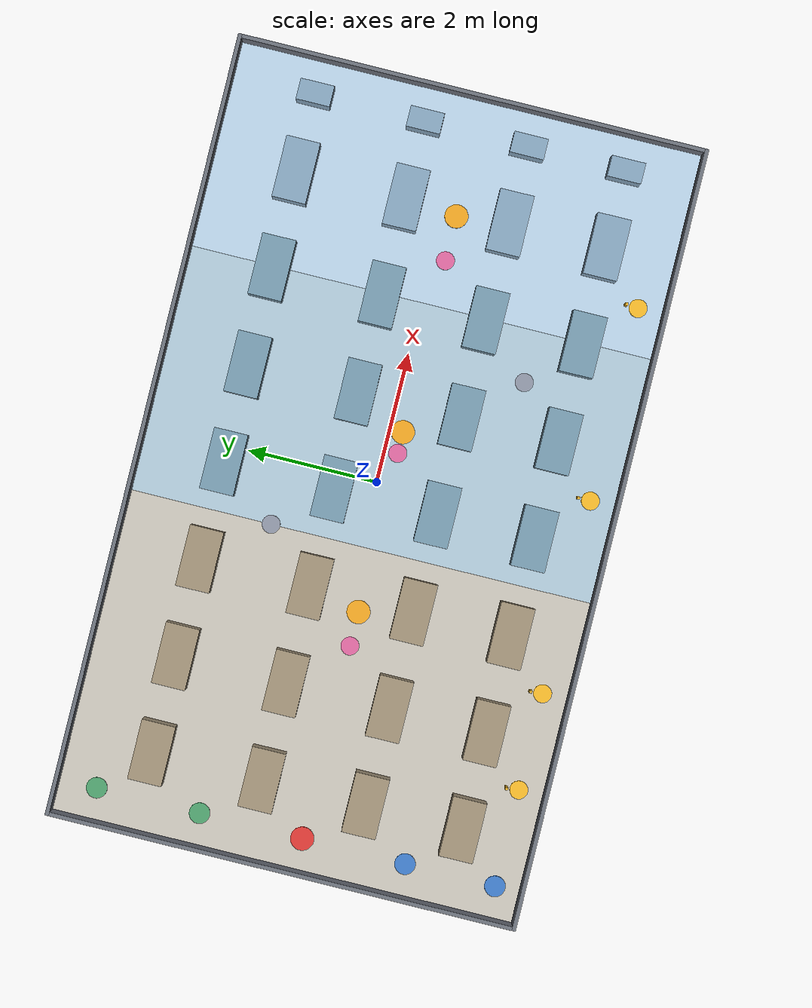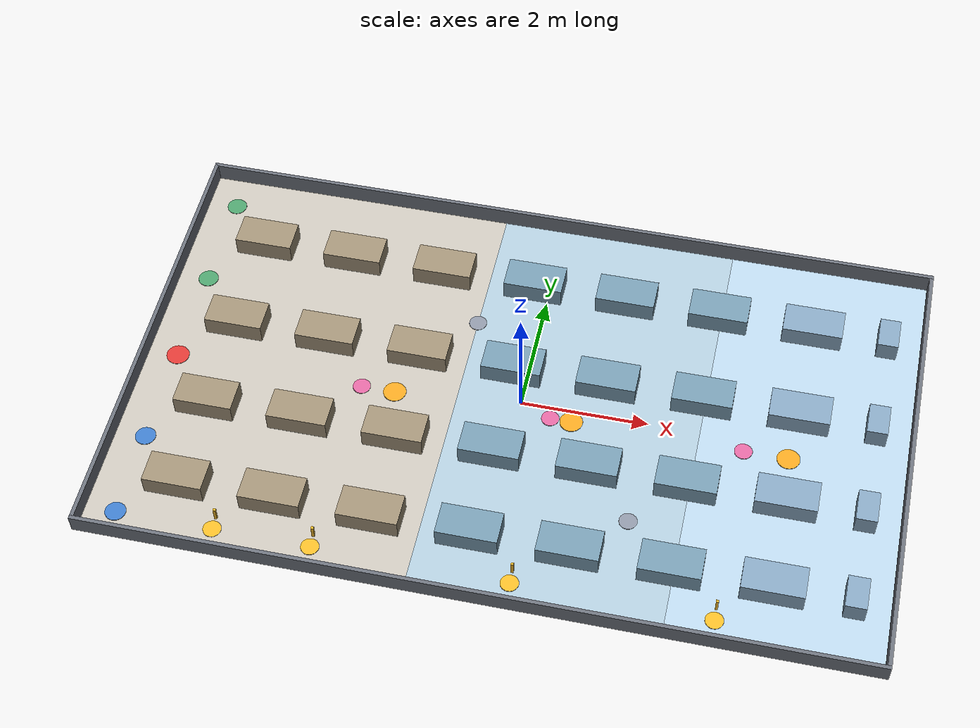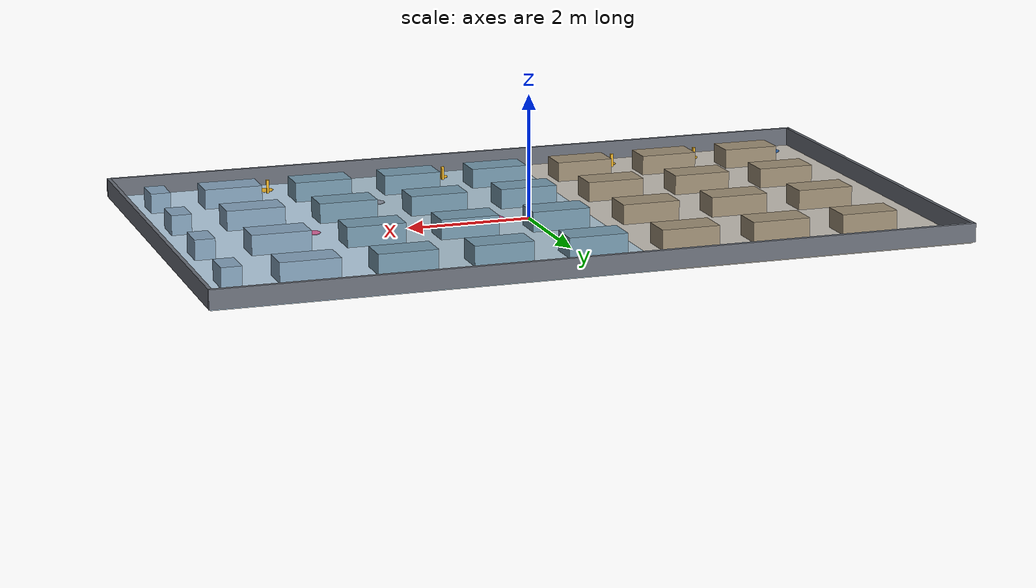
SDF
<?xml version="1.0" ?>
<sdf version="1.9">
  <world name="warehouse_3temp">

    <physics name="1ms" type="ignored">
      <max_step_size>0.002</max_step_size>
      <real_time_factor>1.0</real_time_factor>
    </physics>

    <plugin filename="gz-sim-physics-system" name="gz::sim::systems::Physics"/>
    <plugin filename="gz-sim-user-commands-system" name="gz::sim::systems::UserCommands"/>
    <plugin filename="gz-sim-scene-broadcaster-system" name="gz::sim::systems::SceneBroadcaster"/>
    <plugin filename="gz-sim-contact-system" name="gz::sim::systems::Contact"/>
    <plugin filename="gz-sim-imu-system" name="gz::sim::systems::Imu"/>
    <plugin filename="gz-sim-sensors-system" name="gz::sim::systems::Sensors">
      <render_engine>ogre2</render_engine>
    </plugin>

    <scene>
      <ambient>0.85 0.85 0.88 1</ambient>
      <background>0.62 0.68 0.76 1</background>
      <grid>false</grid>
      <shadows>false</shadows>
    </scene>

    <gui fullscreen="0">
      <plugin filename="MinimalScene" name="3D View">
        <gz-gui>
          <property type="string" key="state">docked</property>
        </gz-gui>
        <engine>ogre2</engine>
        <scene>scene</scene>
        <ambient_light>0.85 0.85 0.88</ambient_light>
        <background_color>0.62 0.68 0.76</background_color>
        <camera_pose>0 -7.5 9.0 0 0.95 1.5708</camera_pose>
      </plugin>
      <plugin filename="EntityContextMenuPlugin" name="Entity context menu">
        <gz-gui>
          <property key="state" type="string">floating</property>
          <property key="width" type="double">5</property>
          <property key="height" type="double">5</property>
          <property key="showTitleBar" type="bool">false</property>
        </gz-gui>
      </plugin>
      <plugin filename="GzSceneManager" name="Scene Manager"/>
      <plugin filename="InteractiveViewControl" name="Interactive view control"/>
      <plugin filename="CameraTracking" name="Camera Tracking"/>
      <plugin filename="MarkerManager" name="Marker manager"/>
      <plugin filename="SelectEntities" name="Select Entities"/>
      <plugin filename="Spawn" name="Spawn Entities"/>
      <plugin filename="VisualizationCapabilities" name="Visualization Capabilities"/>
      <plugin filename="WorldControl" name="World control">
        <gz-gui>
          <title>World control</title>
          <property type="bool" key="showTitleBar">false</property>
          <property type="bool" key="resizable">false</property>
          <property type="double" key="height">72</property>
          <property type="double" key="z">1</property>
          <property type="string" key="state">floating</property>
          <anchors target="3D View">
            <line own="left" target="left"/>
            <line own="bottom" target="bottom"/>
          </anchors>
        </gz-gui>
        <play_pause>true</play_pause>
        <step>true</step>
        <use_event>true</use_event>
      </plugin>
      <plugin filename="WorldStats" name="World stats">
        <gz-gui>
          <title>World stats</title>
          <property type="bool" key="showTitleBar">false</property>
          <property type="bool" key="resizable">false</property>
          <property type="double" key="height">110</property>
          <property type="double" key="width">290</property>
          <property type="double" key="z">1</property>
          <property type="string" key="state">floating</property>
          <anchors target="3D View">
            <line own="right" target="right"/>
            <line own="bottom" target="bottom"/>
          </anchors>
        </gz-gui>
        <sim_time>true</sim_time>
        <real_time>true</real_time>
        <real_time_factor>true</real_time_factor>
      </plugin>

      <!-- 도형 배치 · 이동/회전 · 스크린샷 · 엔티티 조회.
           장애물을 놓아 보거나 로봇을 통로로 옮기려면 필요하다. -->
      <plugin filename="Shapes" name="Shapes">
        <gz-gui>
          <property key="resizable" type="bool">false</property>
          <property key="x" type="double">0</property>
          <property key="y" type="double">0</property>
          <property key="width" type="double">300</property>
          <property key="height" type="double">50</property>
          <property key="state" type="string">floating</property>
          <property key="showTitleBar" type="bool">false</property>
          <property key="cardBackground" type="string">#666666</property>
        </gz-gui>
      </plugin>
      <plugin filename="TransformControl" name="Transform control">
        <gz-gui>
          <property key="resizable" type="bool">false</property>
          <property key="x" type="double">0</property>
          <property key="y" type="double">50</property>
          <property key="width" type="double">250</property>
          <property key="height" type="double">50</property>
          <property key="state" type="string">floating</property>
          <property key="showTitleBar" type="bool">false</property>
          <property key="cardBackground" type="string">#777777</property>
        </gz-gui>
      </plugin>
      <plugin filename="Screenshot" name="Screenshot">
        <gz-gui>
          <property key="resizable" type="bool">false</property>
          <property key="x" type="double">250</property>
          <property key="y" type="double">50</property>
          <property key="width" type="double">50</property>
          <property key="height" type="double">50</property>
          <property key="state" type="string">floating</property>
          <property key="showTitleBar" type="bool">false</property>
          <property key="cardBackground" type="string">#777777</property>
        </gz-gui>
      </plugin>
      <plugin filename="ComponentInspector" name="Component inspector">
        <gz-gui>
          <property type="bool" key="showTitleBar">false</property>
          <property type="string" key="state">docked</property>
        </gz-gui>
      </plugin>
      <plugin filename="EntityTree" name="Entity tree">
        <gz-gui>
          <property type="bool" key="showTitleBar">false</property>
          <property type="string" key="state">docked</property>
        </gz-gui>
      </plugin>
    </gui>

    <light type="directional" name="sun">
      <cast_shadows>false</cast_shadows>
      <pose>0 0 8 0 0 0</pose>
      <diffuse>0.9 0.9 0.9 1</diffuse>
      <specular>0.1 0.1 0.1 1</specular>
      <direction>-0.3 0.4 -0.9</direction>
    </light>

    <light type="point" name="light_ambient">
      <pose>-3.5 0 2.2 0 0 0</pose>
      <diffuse>1.0 1.0 1.0 1</diffuse>
      <specular>0.1 0.1 0.1 1</specular>
      <attenuation><range>12</range><linear>0.05</linear><constant>0.3</constant></attenuation>
      <cast_shadows>false</cast_shadows>
    </light>
    <light type="point" name="light_chilled">
      <pose>0.9 0 2.2 0 0 0</pose>
      <diffuse>0.75 0.75 0.75 1</diffuse>
      <specular>0.1 0.1 0.1 1</specular>
      <attenuation><range>12</range><linear>0.05</linear><constant>0.3</constant></attenuation>
      <cast_shadows>false</cast_shadows>
    </light>
    <light type="point" name="light_frozen">
      <pose>4.4 0 2.2 0 0 0</pose>
      <diffuse>0.55 0.55 0.55 1</diffuse>
      <specular>0.1 0.1 0.1 1</specular>
      <attenuation><range>12</range><linear>0.05</linear><constant>0.3</constant></attenuation>
      <cast_shadows>false</cast_shadows>
    </light>
    <model name="floor">
      <static>true</static>
      <link name="floor_ambient">
        <pose>-3.5 0 -0.01 0 0 0</pose>
        <collision name="collision">
          <geometry><box><size>5.0 7.2 0.02</size></box></geometry>
        </collision>
        <visual name="visual">
          <geometry><box><size>5.0 7.2 0.02</size></box></geometry>
          <material>
            <ambient>0.78 0.76 0.72 1.0</ambient>
            <diffuse>0.78 0.76 0.72 1.0</diffuse>
            <specular>0.1 0.1 0.1 1</specular>
          </material>
          <cast_shadows>false</cast_shadows>
        </visual>
      </link>
      <link name="floor_chilled">
        <pose>0.9 0 -0.01 0 0 0</pose>
        <collision name="collision">
          <geometry><box><size>3.8 7.2 0.02</size></box></geometry>
        </collision>
        <visual name="visual">
          <geometry><box><size>3.8 7.2 0.02</size></box></geometry>
          <material>
            <ambient>0.68 0.78 0.84 1.0</ambient>
            <diffuse>0.68 0.78 0.84 1.0</diffuse>
            <specular>0.1 0.1 0.1 1</specular>
          </material>
          <cast_shadows>false</cast_shadows>
        </visual>
      </link>
      <link name="floor_frozen">
        <pose>4.4 0 -0.01 0 0 0</pose>
        <collision name="collision">
          <geometry><box><size>3.2 7.2 0.02</size></box></geometry>
        </collision>
        <visual name="visual">
          <geometry><box><size>3.2 7.2 0.02</size></box></geometry>
          <material>
            <ambient>0.72 0.82 0.9 1.0</ambient>
            <diffuse>0.72 0.82 0.9 1.0</diffuse>
            <specular>0.1 0.1 0.1 1</specular>
          </material>
          <cast_shadows>false</cast_shadows>
        </visual>
      </link>
    </model>
    <model name="walls">
      <static>true</static>
      <link name="wall_north">
        <pose>0 3.6 0.15 0 0 0</pose>
        <collision name="collision">
          <geometry><box><size>12.06 0.06 0.3</size></box></geometry>
        </collision>
        <visual name="visual">
          <geometry><box><size>12.06 0.06 0.3</size></box></geometry>
          <material>
            <ambient>0.42 0.44 0.48 1.0</ambient>
            <diffuse>0.42 0.44 0.48 1.0</diffuse>
            <specular>0.1 0.1 0.1 1</specular>
          </material>
          <cast_shadows>true</cast_shadows>
        </visual>
      </link>
      <link name="wall_south">
        <pose>0 -3.6 0.15 0 0 0</pose>
        <collision name="collision">
          <geometry><box><size>12.06 0.06 0.3</size></box></geometry>
        </collision>
        <visual name="visual">
          <geometry><box><size>12.06 0.06 0.3</size></box></geometry>
          <material>
            <ambient>0.42 0.44 0.48 1.0</ambient>
            <diffuse>0.42 0.44 0.48 1.0</diffuse>
            <specular>0.1 0.1 0.1 1</specular>
          </material>
          <cast_shadows>true</cast_shadows>
        </visual>
      </link>
      <link name="wall_west">
        <pose>-6.0 0 0.15 0 0 0</pose>
        <collision name="collision">
          <geometry><box><size>0.06 7.2 0.3</size></box></geometry>
        </collision>
        <visual name="visual">
          <geometry><box><size>0.06 7.2 0.3</size></box></geometry>
          <material>
            <ambient>0.42 0.44 0.48 1.0</ambient>
            <diffuse>0.42 0.44 0.48 1.0</diffuse>
            <specular>0.1 0.1 0.1 1</specular>
          </material>
          <cast_shadows>true</cast_shadows>
        </visual>
      </link>
      <link name="wall_east">
        <pose>6.0 0 0.15 0 0 0</pose>
        <collision name="collision">
          <geometry><box><size>0.06 7.2 0.3</size></box></geometry>
        </collision>
        <visual name="visual">
          <geometry><box><size>0.06 7.2 0.3</size></box></geometry>
          <material>
            <ambient>0.42 0.44 0.48 1.0</ambient>
            <diffuse>0.42 0.44 0.48 1.0</diffuse>
            <specular>0.1 0.1 0.1 1</specular>
          </material>
          <cast_shadows>true</cast_shadows>
        </visual>
      </link>
    </model>
    <model name="racks">
      <static>true</static>
      <link name="rack_r1_s1">
        <pose>-4.74 2.3 0.16 0 0 0</pose>
        <collision name="collision">
          <geometry><box><size>0.92 0.52 0.32</size></box></geometry>
        </collision>
        <visual name="visual">
          <geometry><box><size>0.92 0.52 0.32</size></box></geometry>
          <material>
            <ambient>0.62 0.56 0.46 1.0</ambient>
            <diffuse>0.62 0.56 0.46 1.0</diffuse>
            <specular>0.1 0.1 0.1 1</specular>
          </material>
          <cast_shadows>true</cast_shadows>
        </visual>
      </link>
      <link name="rack_r1_s2">
        <pose>-3.25 2.3 0.16 0 0 0</pose>
        <collision name="collision">
          <geometry><box><size>0.94 0.52 0.32</size></box></geometry>
        </collision>
        <visual name="visual">
          <geometry><box><size>0.94 0.52 0.32</size></box></geometry>
          <material>
            <ambient>0.62 0.56 0.46 1.0</ambient>
            <diffuse>0.62 0.56 0.46 1.0</diffuse>
            <specular>0.1 0.1 0.1 1</specular>
          </material>
          <cast_shadows>true</cast_shadows>
        </visual>
      </link>
      <link name="rack_r1_s3">
        <pose>-1.75 2.3 0.16 0 0 0</pose>
        <collision name="collision">
          <geometry><box><size>0.94 0.52 0.32</size></box></geometry>
        </collision>
        <visual name="visual">
          <geometry><box><size>0.94 0.52 0.32</size></box></geometry>
          <material>
            <ambient>0.62 0.56 0.46 1.0</ambient>
            <diffuse>0.62 0.56 0.46 1.0</diffuse>
            <specular>0.1 0.1 0.1 1</specular>
          </material>
          <cast_shadows>true</cast_shadows>
        </visual>
      </link>
      <link name="rack_r1_s4">
        <pose>-0.25 2.3 0.16 0 0 0</pose>
        <collision name="collision">
          <geometry><box><size>0.94 0.52 0.32</size></box></geometry>
        </collision>
        <visual name="visual">
          <geometry><box><size>0.94 0.52 0.32</size></box></geometry>
          <material>
            <ambient>0.46 0.6 0.68 1.0</ambient>
            <diffuse>0.46 0.6 0.68 1.0</diffuse>
            <specular>0.1 0.1 0.1 1</specular>
          </material>
          <cast_shadows>true</cast_shadows>
        </visual>
      </link>
      <link name="rack_r1_s5">
        <pose>1.25 2.3 0.16 0 0 0</pose>
        <collision name="collision">
          <geometry><box><size>0.94 0.52 0.32</size></box></geometry>
        </collision>
        <visual name="visual">
          <geometry><box><size>0.94 0.52 0.32</size></box></geometry>
          <material>
            <ambient>0.46 0.6 0.68 1.0</ambient>
            <diffuse>0.46 0.6 0.68 1.0</diffuse>
            <specular>0.1 0.1 0.1 1</specular>
          </material>
          <cast_shadows>true</cast_shadows>
        </visual>
      </link>
      <link name="rack_r1_s6">
        <pose>2.75 2.3 0.16 0 0 0</pose>
        <collision name="collision">
          <geometry><box><size>0.94 0.52 0.32</size></box></geometry>
        </collision>
        <visual name="visual">
          <geometry><box><size>0.94 0.52 0.32</size></box></geometry>
          <material>
            <ambient>0.46 0.6 0.68 1.0</ambient>
            <diffuse>0.46 0.6 0.68 1.0</diffuse>
            <specular>0.1 0.1 0.1 1</specular>
          </material>
          <cast_shadows>true</cast_shadows>
        </visual>
      </link>
      <link name="rack_r1_s7">
        <pose>4.25 2.3 0.16 0 0 0</pose>
        <collision name="collision">
          <geometry><box><size>0.94 0.52 0.32</size></box></geometry>
        </collision>
        <visual name="visual">
          <geometry><box><size>0.94 0.52 0.32</size></box></geometry>
          <material>
            <ambient>0.52 0.64 0.74 1.0</ambient>
            <diffuse>0.52 0.64 0.74 1.0</diffuse>
            <specular>0.1 0.1 0.1 1</specular>
          </material>
          <cast_shadows>true</cast_shadows>
        </visual>
      </link>
      <link name="rack_r1_s8">
        <pose>5.44 2.3 0.16 0 0 0</pose>
        <collision name="collision">
          <geometry><box><size>0.32 0.52 0.32</size></box></geometry>
        </collision>
        <visual name="visual">
          <geometry><box><size>0.32 0.52 0.32</size></box></geometry>
          <material>
            <ambient>0.52 0.64 0.74 1.0</ambient>
            <diffuse>0.52 0.64 0.74 1.0</diffuse>
            <specular>0.1 0.1 0.1 1</specular>
          </material>
          <cast_shadows>true</cast_shadows>
        </visual>
      </link>
      <link name="rack_r2_s1">
        <pose>-4.74 0.6 0.16 0 0 0</pose>
        <collision name="collision">
          <geometry><box><size>0.92 0.52 0.32</size></box></geometry>
        </collision>
        <visual name="visual">
          <geometry><box><size>0.92 0.52 0.32</size></box></geometry>
          <material>
            <ambient>0.62 0.56 0.46 1.0</ambient>
            <diffuse>0.62 0.56 0.46 1.0</diffuse>
            <specular>0.1 0.1 0.1 1</specular>
          </material>
          <cast_shadows>true</cast_shadows>
        </visual>
      </link>
      <link name="rack_r2_s2">
        <pose>-3.25 0.6 0.16 0 0 0</pose>
        <collision name="collision">
          <geometry><box><size>0.94 0.52 0.32</size></box></geometry>
        </collision>
        <visual name="visual">
          <geometry><box><size>0.94 0.52 0.32</size></box></geometry>
          <material>
            <ambient>0.62 0.56 0.46 1.0</ambient>
            <diffuse>0.62 0.56 0.46 1.0</diffuse>
            <specular>0.1 0.1 0.1 1</specular>
          </material>
          <cast_shadows>true</cast_shadows>
        </visual>
      </link>
      <link name="rack_r2_s3">
        <pose>-1.75 0.6 0.16 0 0 0</pose>
        <collision name="collision">
          <geometry><box><size>0.94 0.52 0.32</size></box></geometry>
        </collision>
        <visual name="visual">
          <geometry><box><size>0.94 0.52 0.32</size></box></geometry>
          <material>
            <ambient>0.62 0.56 0.46 1.0</ambient>
            <diffuse>0.62 0.56 0.46 1.0</diffuse>
            <specular>0.1 0.1 0.1 1</specular>
          </material>
          <cast_shadows>true</cast_shadows>
        </visual>
      </link>
      <link name="rack_r2_s4">
        <pose>-0.25 0.6 0.16 0 0 0</pose>
        <collision name="collision">
          <geometry><box><size>0.94 0.52 0.32</size></box></geometry>
        </collision>
        <visual name="visual">
          <geometry><box><size>0.94 0.52 0.32</size></box></geometry>
          <material>
            <ambient>0.46 0.6 0.68 1.0</ambient>
            <diffuse>0.46 0.6 0.68 1.0</diffuse>
            <specular>0.1 0.1 0.1 1</specular>
          </material>
          <cast_shadows>true</cast_shadows>
        </visual>
      </link>
      <link name="rack_r2_s5">
        <pose>1.25 0.6 0.16 0 0 0</pose>
        <collision name="collision">
          <geometry><box><size>0.94 0.52 0.32</size></box></geometry>
        </collision>
        <visual name="visual">
          <geometry><box><size>0.94 0.52 0.32</size></box></geometry>
          <material>
            <ambient>0.46 0.6 0.68 1.0</ambient>
            <diffuse>0.46 0.6 0.68 1.0</diffuse>
            <specular>0.1 0.1 0.1 1</specular>
          </material>
          <cast_shadows>true</cast_shadows>
        </visual>
      </link>
      <link name="rack_r2_s6">
        <pose>2.75 0.6 0.16 0 0 0</pose>
        <collision name="collision">
          <geometry><box><size>0.94 0.52 0.32</size></box></geometry>
        </collision>
        <visual name="visual">
          <geometry><box><size>0.94 0.52 0.32</size></box></geometry>
          <material>
            <ambient>0.46 0.6 0.68 1.0</ambient>
            <diffuse>0.46 0.6 0.68 1.0</diffuse>
            <specular>0.1 0.1 0.1 1</specular>
          </material>
          <cast_shadows>true</cast_shadows>
        </visual>
      </link>
      <link name="rack_r2_s7">
        <pose>4.25 0.6 0.16 0 0 0</pose>
        <collision name="collision">
          <geometry><box><size>0.94 0.52 0.32</size></box></geometry>
        </collision>
        <visual name="visual">
          <geometry><box><size>0.94 0.52 0.32</size></box></geometry>
          <material>
            <ambient>0.52 0.64 0.74 1.0</ambient>
            <diffuse>0.52 0.64 0.74 1.0</diffuse>
            <specular>0.1 0.1 0.1 1</specular>
          </material>
          <cast_shadows>true</cast_shadows>
        </visual>
      </link>
      <link name="rack_r2_s8">
        <pose>5.44 0.6 0.16 0 0 0</pose>
        <collision name="collision">
          <geometry><box><size>0.32 0.52 0.32</size></box></geometry>
        </collision>
        <visual name="visual">
          <geometry><box><size>0.32 0.52 0.32</size></box></geometry>
          <material>
            <ambient>0.52 0.64 0.74 1.0</ambient>
            <diffuse>0.52 0.64 0.74 1.0</diffuse>
            <specular>0.1 0.1 0.1 1</specular>
          </material>
          <cast_shadows>true</cast_shadows>
        </visual>
      </link>
      <link name="rack_r3_s1">
        <pose>-4.74 -1.0 0.16 0 0 0</pose>
        <collision name="collision">
          <geometry><box><size>0.92 0.52 0.32</size></box></geometry>
        </collision>
        <visual name="visual">
          <geometry><box><size>0.92 0.52 0.32</size></box></geometry>
          <material>
            <ambient>0.62 0.56 0.46 1.0</ambient>
            <diffuse>0.62 0.56 0.46 1.0</diffuse>
            <specular>0.1 0.1 0.1 1</specular>
          </material>
          <cast_shadows>true</cast_shadows>
        </visual>
      </link>
      <link name="rack_r3_s2">
        <pose>-3.25 -1.0 0.16 0 0 0</pose>
        <collision name="collision">
          <geometry><box><size>0.94 0.52 0.32</size></box></geometry>
        </collision>
        <visual name="visual">
          <geometry><box><size>0.94 0.52 0.32</size></box></geometry>
          <material>
            <ambient>0.62 0.56 0.46 1.0</ambient>
            <diffuse>0.62 0.56 0.46 1.0</diffuse>
            <specular>0.1 0.1 0.1 1</specular>
          </material>
          <cast_shadows>true</cast_shadows>
        </visual>
      </link>
      <link name="rack_r3_s3">
        <pose>-1.75 -1.0 0.16 0 0 0</pose>
        <collision name="collision">
          <geometry><box><size>0.94 0.52 0.32</size></box></geometry>
        </collision>
        <visual name="visual">
          <geometry><box><size>0.94 0.52 0.32</size></box></geometry>
          <material>
            <ambient>0.62 0.56 0.46 1.0</ambient>
            <diffuse>0.62 0.56 0.46 1.0</diffuse>
            <specular>0.1 0.1 0.1 1</specular>
          </material>
          <cast_shadows>true</cast_shadows>
        </visual>
      </link>
      <link name="rack_r3_s4">
        <pose>-0.25 -1.0 0.16 0 0 0</pose>
        <collision name="collision">
          <geometry><box><size>0.94 0.52 0.32</size></box></geometry>
        </collision>
        <visual name="visual">
          <geometry><box><size>0.94 0.52 0.32</size></box></geometry>
          <material>
            <ambient>0.46 0.6 0.68 1.0</ambient>
            <diffuse>0.46 0.6 0.68 1.0</diffuse>
            <specular>0.1 0.1 0.1 1</specular>
          </material>
          <cast_shadows>true</cast_shadows>
        </visual>
      </link>
      <link name="rack_r3_s5">
        <pose>1.25 -1.0 0.16 0 0 0</pose>
        <collision name="collision">
          <geometry><box><size>0.94 0.52 0.32</size></box></geometry>
        </collision>
        <visual name="visual">
          <geometry><box><size>0.94 0.52 0.32</size></box></geometry>
          <material>
            <ambient>0.46 0.6 0.68 1.0</ambient>
            <diffuse>0.46 0.6 0.68 1.0</diffuse>
            <specular>0.1 0.1 0.1 1</specular>
          </material>
          <cast_shadows>true</cast_shadows>
        </visual>
      </link>
      <link name="rack_r3_s6">
        <pose>2.75 -1.0 0.16 0 0 0</pose>
        <collision name="collision">
          <geometry><box><size>0.94 0.52 0.32</size></box></geometry>
        </collision>
        <visual name="visual">
          <geometry><box><size>0.94 0.52 0.32</size></box></geometry>
          <material>
            <ambient>0.46 0.6 0.68 1.0</ambient>
            <diffuse>0.46 0.6 0.68 1.0</diffuse>
            <specular>0.1 0.1 0.1 1</specular>
          </material>
          <cast_shadows>true</cast_shadows>
        </visual>
      </link>
      <link name="rack_r3_s7">
        <pose>4.25 -1.0 0.16 0 0 0</pose>
        <collision name="collision">
          <geometry><box><size>0.94 0.52 0.32</size></box></geometry>
        </collision>
        <visual name="visual">
          <geometry><box><size>0.94 0.52 0.32</size></box></geometry>
          <material>
            <ambient>0.52 0.64 0.74 1.0</ambient>
            <diffuse>0.52 0.64 0.74 1.0</diffuse>
            <specular>0.1 0.1 0.1 1</specular>
          </material>
          <cast_shadows>true</cast_shadows>
        </visual>
      </link>
      <link name="rack_r3_s8">
        <pose>5.44 -1.0 0.16 0 0 0</pose>
        <collision name="collision">
          <geometry><box><size>0.32 0.52 0.32</size></box></geometry>
        </collision>
        <visual name="visual">
          <geometry><box><size>0.32 0.52 0.32</size></box></geometry>
          <material>
            <ambient>0.52 0.64 0.74 1.0</ambient>
            <diffuse>0.52 0.64 0.74 1.0</diffuse>
            <specular>0.1 0.1 0.1 1</specular>
          </material>
          <cast_shadows>true</cast_shadows>
        </visual>
      </link>
      <link name="rack_r4_s1">
        <pose>-4.74 -2.5 0.16 0 0 0</pose>
        <collision name="collision">
          <geometry><box><size>0.92 0.52 0.32</size></box></geometry>
        </collision>
        <visual name="visual">
          <geometry><box><size>0.92 0.52 0.32</size></box></geometry>
          <material>
            <ambient>0.62 0.56 0.46 1.0</ambient>
            <diffuse>0.62 0.56 0.46 1.0</diffuse>
            <specular>0.1 0.1 0.1 1</specular>
          </material>
          <cast_shadows>true</cast_shadows>
        </visual>
      </link>
      <link name="rack_r4_s2">
        <pose>-3.25 -2.5 0.16 0 0 0</pose>
        <collision name="collision">
          <geometry><box><size>0.94 0.52 0.32</size></box></geometry>
        </collision>
        <visual name="visual">
          <geometry><box><size>0.94 0.52 0.32</size></box></geometry>
          <material>
            <ambient>0.62 0.56 0.46 1.0</ambient>
            <diffuse>0.62 0.56 0.46 1.0</diffuse>
            <specular>0.1 0.1 0.1 1</specular>
          </material>
          <cast_shadows>true</cast_shadows>
        </visual>
      </link>
      <link name="rack_r4_s3">
        <pose>-1.75 -2.5 0.16 0 0 0</pose>
        <collision name="collision">
          <geometry><box><size>0.94 0.52 0.32</size></box></geometry>
        </collision>
        <visual name="visual">
          <geometry><box><size>0.94 0.52 0.32</size></box></geometry>
          <material>
            <ambient>0.62 0.56 0.46 1.0</ambient>
            <diffuse>0.62 0.56 0.46 1.0</diffuse>
            <specular>0.1 0.1 0.1 1</specular>
          </material>
          <cast_shadows>true</cast_shadows>
        </visual>
      </link>
      <link name="rack_r4_s4">
        <pose>-0.25 -2.5 0.16 0 0 0</pose>
        <collision name="collision">
          <geometry><box><size>0.94 0.52 0.32</size></box></geometry>
        </collision>
        <visual name="visual">
          <geometry><box><size>0.94 0.52 0.32</size></box></geometry>
          <material>
            <ambient>0.46 0.6 0.68 1.0</ambient>
            <diffuse>0.46 0.6 0.68 1.0</diffuse>
            <specular>0.1 0.1 0.1 1</specular>
          </material>
          <cast_shadows>true</cast_shadows>
        </visual>
      </link>
      <link name="rack_r4_s5">
        <pose>1.25 -2.5 0.16 0 0 0</pose>
        <collision name="collision">
          <geometry><box><size>0.94 0.52 0.32</size></box></geometry>
        </collision>
        <visual name="visual">
          <geometry><box><size>0.94 0.52 0.32</size></box></geometry>
          <material>
            <ambient>0.46 0.6 0.68 1.0</ambient>
            <diffuse>0.46 0.6 0.68 1.0</diffuse>
            <specular>0.1 0.1 0.1 1</specular>
          </material>
          <cast_shadows>true</cast_shadows>
        </visual>
      </link>
      <link name="rack_r4_s6">
        <pose>2.75 -2.5 0.16 0 0 0</pose>
        <collision name="collision">
          <geometry><box><size>0.94 0.52 0.32</size></box></geometry>
        </collision>
        <visual name="visual">
          <geometry><box><size>0.94 0.52 0.32</size></box></geometry>
          <material>
            <ambient>0.46 0.6 0.68 1.0</ambient>
            <diffuse>0.46 0.6 0.68 1.0</diffuse>
            <specular>0.1 0.1 0.1 1</specular>
          </material>
          <cast_shadows>true</cast_shadows>
        </visual>
      </link>
      <link name="rack_r4_s7">
        <pose>4.25 -2.5 0.16 0 0 0</pose>
        <collision name="collision">
          <geometry><box><size>0.94 0.52 0.32</size></box></geometry>
        </collision>
        <visual name="visual">
          <geometry><box><size>0.94 0.52 0.32</size></box></geometry>
          <material>
            <ambient>0.52 0.64 0.74 1.0</ambient>
            <diffuse>0.52 0.64 0.74 1.0</diffuse>
            <specular>0.1 0.1 0.1 1</specular>
          </material>
          <cast_shadows>true</cast_shadows>
        </visual>
      </link>
      <link name="rack_r4_s8">
        <pose>5.44 -2.5 0.16 0 0 0</pose>
        <collision name="collision">
          <geometry><box><size>0.32 0.52 0.32</size></box></geometry>
        </collision>
        <visual name="visual">
          <geometry><box><size>0.32 0.52 0.32</size></box></geometry>
          <material>
            <ambient>0.52 0.64 0.74 1.0</ambient>
            <diffuse>0.52 0.64 0.74 1.0</diffuse>
            <specular>0.1 0.1 0.1 1</specular>
          </material>
          <cast_shadows>true</cast_shadows>
        </visual>
      </link>
    </model>
    <model name="stations">
      <static>true</static>
      <link name="station_IN_1">
        <pose>-5.5 3.0 0.005 0 0 0</pose>
        <visual name="visual">
          <geometry><cylinder><radius>0.16</radius><length>0.01</length></cylinder></geometry>
          <material>
            <ambient>0.3 0.62 0.42 1.0</ambient>
            <diffuse>0.3 0.62 0.42 1.0</diffuse>
          </material>
          <cast_shadows>false</cast_shadows>
        </visual>
      </link>
      <link name="station_IN_2">
        <pose>-5.5 1.4 0.005 0 0 0</pose>
        <visual name="visual">
          <geometry><cylinder><radius>0.16</radius><length>0.01</length></cylinder></geometry>
          <material>
            <ambient>0.3 0.62 0.42 1.0</ambient>
            <diffuse>0.3 0.62 0.42 1.0</diffuse>
          </material>
          <cast_shadows>false</cast_shadows>
        </visual>
      </link>
      <link name="station_OUT_1">
        <pose>-5.5 -1.8 0.005 0 0 0</pose>
        <visual name="visual">
          <geometry><cylinder><radius>0.16</radius><length>0.01</length></cylinder></geometry>
          <material>
            <ambient>0.24 0.48 0.78 1.0</ambient>
            <diffuse>0.24 0.48 0.78 1.0</diffuse>
          </material>
          <cast_shadows>false</cast_shadows>
        </visual>
      </link>
      <link name="station_OUT_2">
        <pose>-5.5 -3.2 0.005 0 0 0</pose>
        <visual name="visual">
          <geometry><cylinder><radius>0.16</radius><length>0.01</length></cylinder></geometry>
          <material>
            <ambient>0.24 0.48 0.78 1.0</ambient>
            <diffuse>0.24 0.48 0.78 1.0</diffuse>
          </material>
          <cast_shadows>false</cast_shadows>
        </visual>
      </link>
      <link name="station_CHG_1">
        <pose>-4.0 -3.2 0.005 0 0 0</pose>
        <visual name="visual">
          <geometry><cylinder><radius>0.14</radius><length>0.01</length></cylinder></geometry>
          <material>
            <ambient>0.95 0.72 0.16 1.0</ambient>
            <diffuse>0.95 0.72 0.16 1.0</diffuse>
          </material>
          <cast_shadows>false</cast_shadows>
        </visual>
      </link>
      <link name="charger_post_CHG_1">
        <pose>-4.0 -3.0 0.11 0 0 0</pose>
        <collision name="collision">
          <geometry><box><size>0.04 0.04 0.22</size></box></geometry>
        </collision>
        <visual name="visual">
          <geometry><box><size>0.04 0.04 0.22</size></box></geometry>
          <material>
            <ambient>0.95 0.72 0.16 1.0</ambient>
            <diffuse>0.95 0.72 0.16 1.0</diffuse>
            <specular>0.1 0.1 0.1 1</specular>
          </material>
          <cast_shadows>true</cast_shadows>
        </visual>
      </link>
      <link name="station_CHG_2">
        <pose>-2.5 -3.2 0.005 0 0 0</pose>
        <visual name="visual">
          <geometry><cylinder><radius>0.14</radius><length>0.01</length></cylinder></geometry>
          <material>
            <ambient>0.95 0.72 0.16 1.0</ambient>
            <diffuse>0.95 0.72 0.16 1.0</diffuse>
          </material>
          <cast_shadows>false</cast_shadows>
        </visual>
      </link>
      <link name="charger_post_CHG_2">
        <pose>-2.5 -3.0 0.11 0 0 0</pose>
        <collision name="collision">
          <geometry><box><size>0.04 0.04 0.22</size></box></geometry>
        </collision>
        <visual name="visual">
          <geometry><box><size>0.04 0.04 0.22</size></box></geometry>
          <material>
            <ambient>0.95 0.72 0.16 1.0</ambient>
            <diffuse>0.95 0.72 0.16 1.0</diffuse>
            <specular>0.1 0.1 0.1 1</specular>
          </material>
          <cast_shadows>true</cast_shadows>
        </visual>
      </link>
      <link name="station_CHG_3">
        <pose>0.5 -3.2 0.005 0 0 0</pose>
        <visual name="visual">
          <geometry><cylinder><radius>0.14</radius><length>0.01</length></cylinder></geometry>
          <material>
            <ambient>0.95 0.72 0.16 1.0</ambient>
            <diffuse>0.95 0.72 0.16 1.0</diffuse>
          </material>
          <cast_shadows>false</cast_shadows>
        </visual>
      </link>
      <link name="charger_post_CHG_3">
        <pose>0.5 -3.0 0.11 0 0 0</pose>
        <collision name="collision">
          <geometry><box><size>0.04 0.04 0.22</size></box></geometry>
        </collision>
        <visual name="visual">
          <geometry><box><size>0.04 0.04 0.22</size></box></geometry>
          <material>
            <ambient>0.95 0.72 0.16 1.0</ambient>
            <diffuse>0.95 0.72 0.16 1.0</diffuse>
            <specular>0.1 0.1 0.1 1</specular>
          </material>
          <cast_shadows>true</cast_shadows>
        </visual>
      </link>
      <link name="station_CHG_4">
        <pose>3.5 -3.2 0.005 0 0 0</pose>
        <visual name="visual">
          <geometry><cylinder><radius>0.14</radius><length>0.01</length></cylinder></geometry>
          <material>
            <ambient>0.95 0.72 0.16 1.0</ambient>
            <diffuse>0.95 0.72 0.16 1.0</diffuse>
          </material>
          <cast_shadows>false</cast_shadows>
        </visual>
      </link>
      <link name="charger_post_CHG_4">
        <pose>3.5 -3.0 0.11 0 0 0</pose>
        <collision name="collision">
          <geometry><box><size>0.04 0.04 0.22</size></box></geometry>
        </collision>
        <visual name="visual">
          <geometry><box><size>0.04 0.04 0.22</size></box></geometry>
          <material>
            <ambient>0.95 0.72 0.16 1.0</ambient>
            <diffuse>0.95 0.72 0.16 1.0</diffuse>
            <specular>0.1 0.1 0.1 1</specular>
          </material>
          <cast_shadows>true</cast_shadows>
        </visual>
      </link>
      <link name="station_WS_1">
        <pose>-2.5 -0.2 0.005 0 0 0</pose>
        <visual name="visual">
          <geometry><cylinder><radius>0.14</radius><length>0.01</length></cylinder></geometry>
          <material>
            <ambient>0.86 0.4 0.62 1.0</ambient>
            <diffuse>0.86 0.4 0.62 1.0</diffuse>
          </material>
          <cast_shadows>false</cast_shadows>
        </visual>
      </link>
      <link name="station_WS_2">
        <pose>0.5 -0.2 0.005 0 0 0</pose>
        <visual name="visual">
          <geometry><cylinder><radius>0.14</radius><length>0.01</length></cylinder></geometry>
          <material>
            <ambient>0.86 0.4 0.62 1.0</ambient>
            <diffuse>0.86 0.4 0.62 1.0</diffuse>
          </material>
          <cast_shadows>false</cast_shadows>
        </visual>
      </link>
      <link name="station_WS_3">
        <pose>3.5 -0.2 0.005 0 0 0</pose>
        <visual name="visual">
          <geometry><cylinder><radius>0.14</radius><length>0.01</length></cylinder></geometry>
          <material>
            <ambient>0.86 0.4 0.62 1.0</ambient>
            <diffuse>0.86 0.4 0.62 1.0</diffuse>
          </material>
          <cast_shadows>false</cast_shadows>
        </visual>
      </link>
      <link name="station_LOAD_A">
        <pose>-1.97 -0.2 0.005 0 0 0</pose>
        <visual name="visual">
          <geometry><cylinder><radius>0.18</radius><length>0.01</length></cylinder></geometry>
          <material>
            <ambient>0.93 0.64 0.13 1.0</ambient>
            <diffuse>0.93 0.64 0.13 1.0</diffuse>
          </material>
          <cast_shadows>false</cast_shadows>
        </visual>
      </link>
      <link name="station_LOAD_C">
        <pose>0.83 -0.2 0.005 0 0 0</pose>
        <visual name="visual">
          <geometry><cylinder><radius>0.18</radius><length>0.01</length></cylinder></geometry>
          <material>
            <ambient>0.93 0.64 0.13 1.0</ambient>
            <diffuse>0.93 0.64 0.13 1.0</diffuse>
          </material>
          <cast_shadows>false</cast_shadows>
        </visual>
      </link>
      <link name="station_LOAD_F">
        <pose>4.19 -0.2 0.005 0 0 0</pose>
        <visual name="visual">
          <geometry><cylinder><radius>0.18</radius><length>0.01</length></cylinder></geometry>
          <material>
            <ambient>0.93 0.64 0.13 1.0</ambient>
            <diffuse>0.93 0.64 0.13 1.0</diffuse>
          </material>
          <cast_shadows>false</cast_shadows>
        </visual>
      </link>
      <link name="station_STB_1">
        <pose>-1.0 1.4 0.005 0 0 0</pose>
        <visual name="visual">
          <geometry><cylinder><radius>0.14</radius><length>0.01</length></cylinder></geometry>
          <material>
            <ambient>0.55 0.58 0.64 1.0</ambient>
            <diffuse>0.55 0.58 0.64 1.0</diffuse>
          </material>
          <cast_shadows>false</cast_shadows>
        </visual>
      </link>
      <link name="station_STB_2">
        <pose>2.0 -1.8 0.005 0 0 0</pose>
        <visual name="visual">
          <geometry><cylinder><radius>0.14</radius><length>0.01</length></cylinder></geometry>
          <material>
            <ambient>0.55 0.58 0.64 1.0</ambient>
            <diffuse>0.55 0.58 0.64 1.0</diffuse>
          </material>
          <cast_shadows>false</cast_shadows>
        </visual>
      </link>
      <link name="station_ASM_1">
        <pose>-5.5 -0.2 0.005 0 0 0</pose>
        <visual name="visual">
          <geometry><cylinder><radius>0.18</radius><length>0.01</length></cylinder></geometry>
          <material>
            <ambient>0.85 0.22 0.2 1.0</ambient>
            <diffuse>0.85 0.22 0.2 1.0</diffuse>
          </material>
          <cast_shadows>false</cast_shadows>
        </visual>
      </link>
    </model>
  </world>
</sdf>
